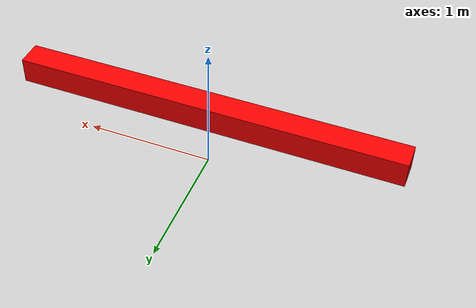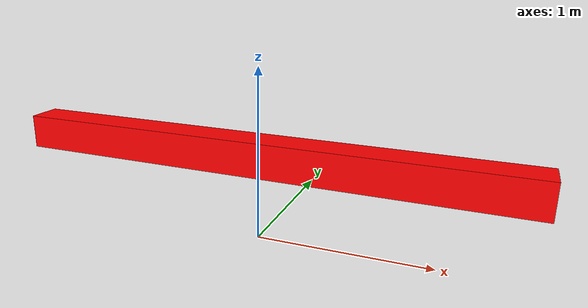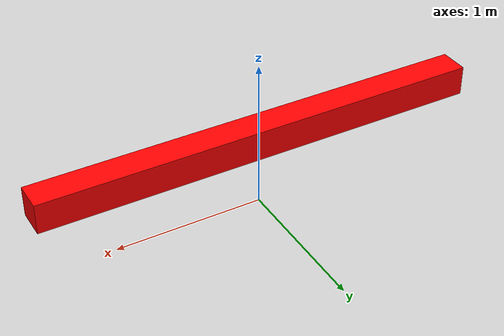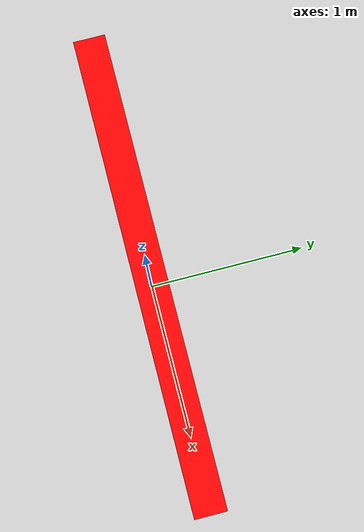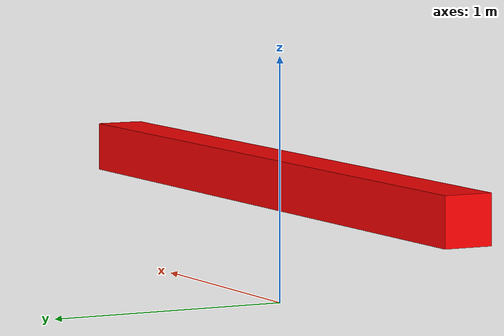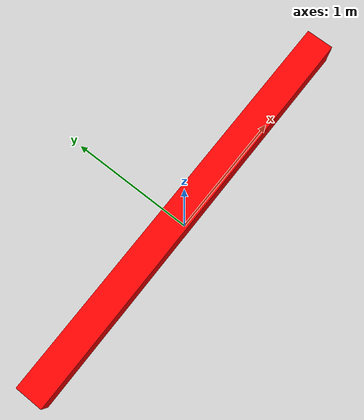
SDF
<?xml version="1.0" ?>
<sdf version="1.6">
  <model name="rail_barrier">
    <static>true</static>

    <!-- ===== TRỤ TRÁI ===== -->

    <!-- ===== TRỤ PHẢI ===== -->

    <!-- ===== THANH CHẮN NGANG ===== -->
    <link name="bar">
      <pose>0 0 0.5 0 0 0</pose>
      <collision name="collision">
        <geometry>
          <box>
            <size>3.0 0.2 0.2</size>
          </box>
        </geometry>
      </collision>
      <visual name="visual">
        <geometry>
          <box>
            <size>3.0 0.2 0.2</size>
          </box>
        </geometry>
        <material>
          <ambient>1 0 0 1</ambient>
          <diffuse>1 0 0 1</diffuse>
        </material>
      </visual>
    </link>

  </model>
</sdf>
